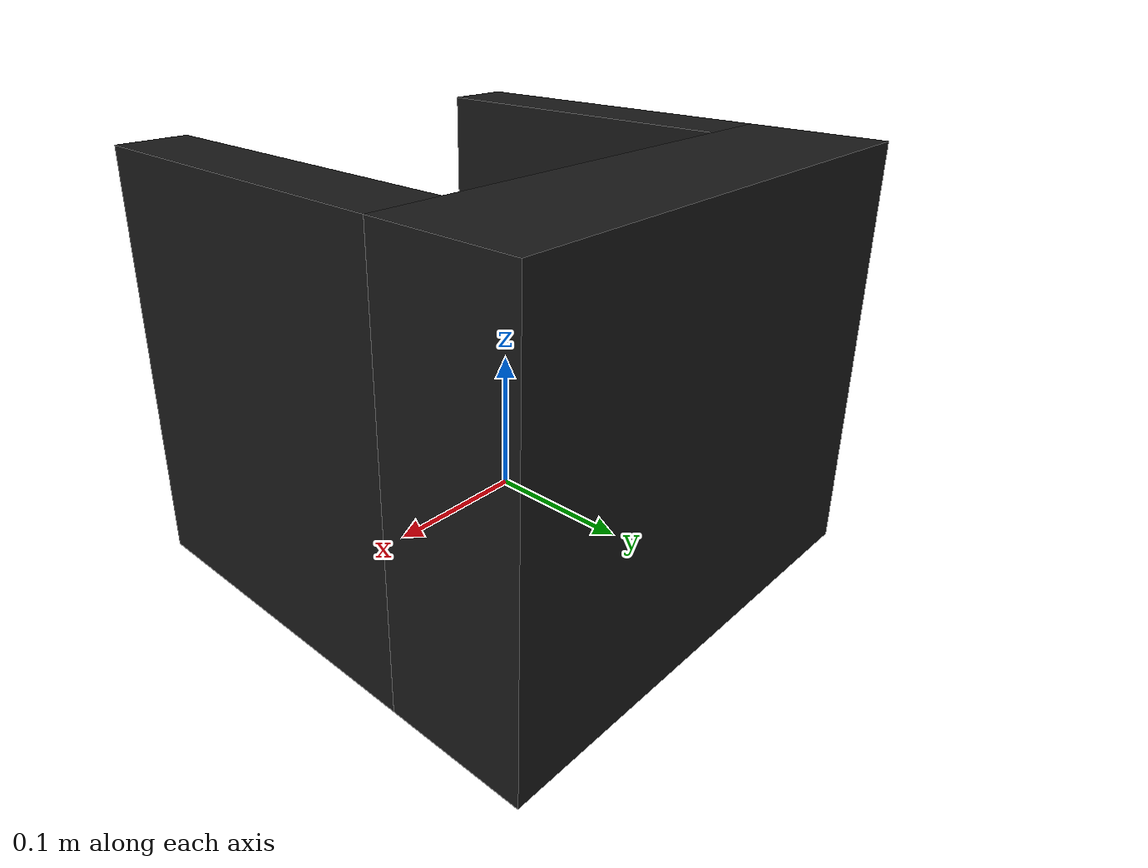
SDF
<?xml version="1.0" ?>
<sdf version="1.8">
  <model name="charge_station">
    <static>true</static>

    <link name="station_front">
      <pose>0 0.125 0.1 0 0 0</pose>
      <collision name="collision">
        <geometry>
          <box>
            <size>0.35 0.1 0.3</size>
          </box>
        </geometry>
      </collision>
      <visual name="visual">
        <geometry>
          <box>
            <size>0.35 0.1 0.3</size>
          </box>
        </geometry>
        <material>
          <ambient>0.1 0.1 0.1 0.9</ambient>
          <diffuse>0.1 0.1 0.1 0.9</diffuse>
        </material>
      </visual>
    </link>

    <link name="station_left">
      <pose>-0.15 -0.05 0.1 0 0 0</pose>
      <collision name="collision">
        <geometry>
          <box>
            <size>0.05 0.25 0.3</size>
          </box>
        </geometry>
      </collision>
      <visual name="visual">
        <geometry>
          <box>
            <size>0.05 0.25 0.3</size>
          </box>
        </geometry>
        <material>
          <ambient>0.1 0.1 0.1 0.9</ambient>
          <diffuse>0.1 0.1 0.1 0.9</diffuse>
        </material>
      </visual>
    </link>

    <link name="station_right">
      <pose>0.15 -0.05 0.1 0 0 0</pose>
      <collision name="collision">
        <geometry>
          <box>
            <size>0.05 0.25 0.3</size>
          </box>
        </geometry>
      </collision>
      <visual name="visual">
        <geometry>
          <box>
            <size>0.05 0.25 0.3</size>
          </box>
        </geometry>
        <material>
          <ambient>0.1 0.1 0.1 0.9</ambient>
          <diffuse>0.1 0.1 0.1 0.9</diffuse>
        </material>
      </visual>
    </link>

  </model>
</sdf>
